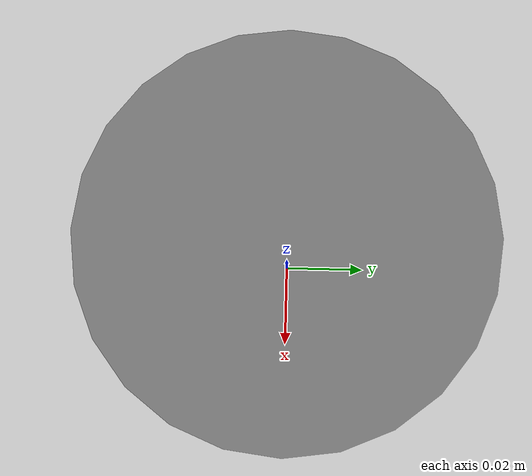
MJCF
<mujoco model="corn_can">
  <asset>
    <material name="corn_can_mat" rgba="0.92 0.78 0.2 1" specular="0.3" shininess="0.1"/>
    <mesh name="corn_can_vis" file="corn_can_libero.obj" scale="1 1 1"/>
  </asset>
  <worldbody>
    <body>
      <body name="object">
        <geom type="mesh" mesh="corn_can_vis" material="corn_can_mat" group="1" contype="0" conaffinity="0"/>
        <geom name="corn_can_collision" type="cylinder" size="0.03571 0.02850" pos="0 0 0.02850" group="0" density="100" friction="0.95 0.3 0.1" solimp="0.998 0.998 0.001" solref="0.001 1"/>
      </body>
      <site rgba="0 0 0 0" size="0.005" pos="0 0 0" name="bottom_site"/>
      <site rgba="0 0 0 0" size="0.005" pos="0 0 0.05700" name="top_site"/>
      <site rgba="0 0 0 0" size="0.005" pos="0.03571 0 0" name="horizontal_radius_site"/>
    </body>
  </worldbody>
</mujoco>
